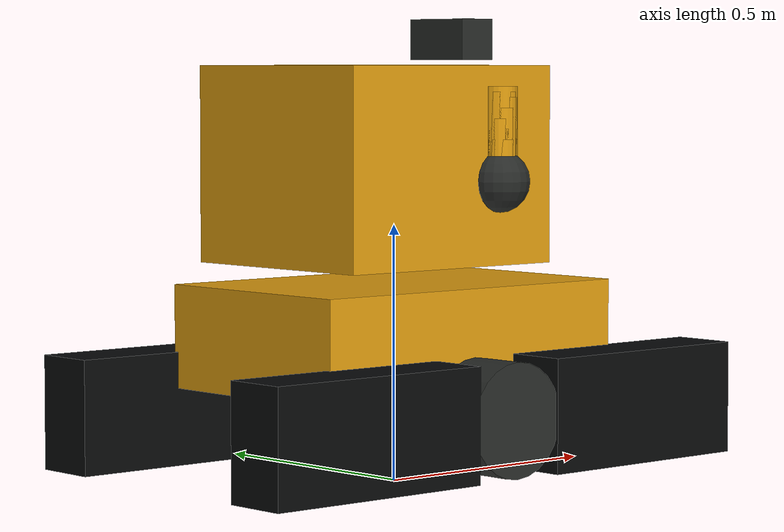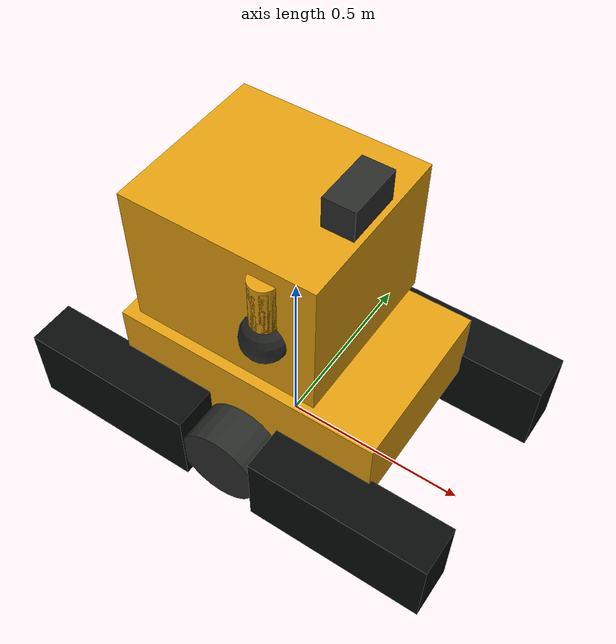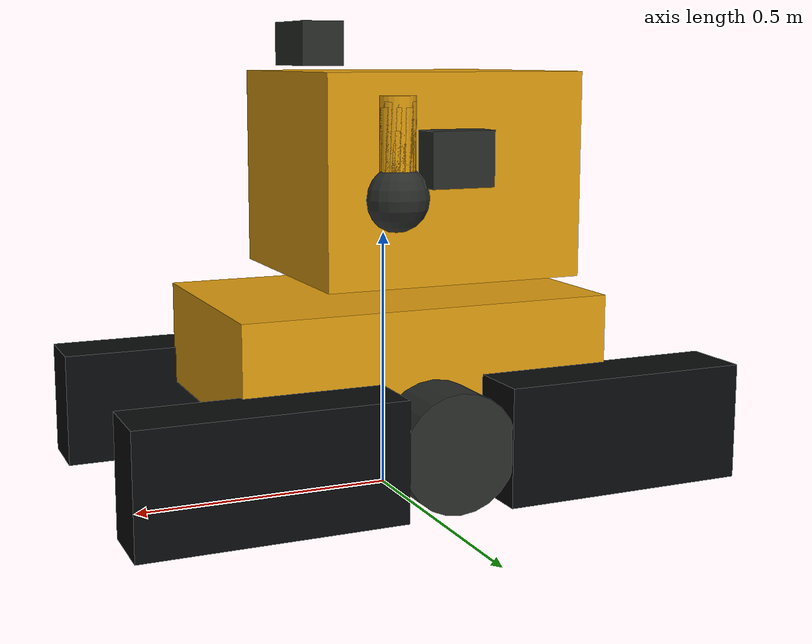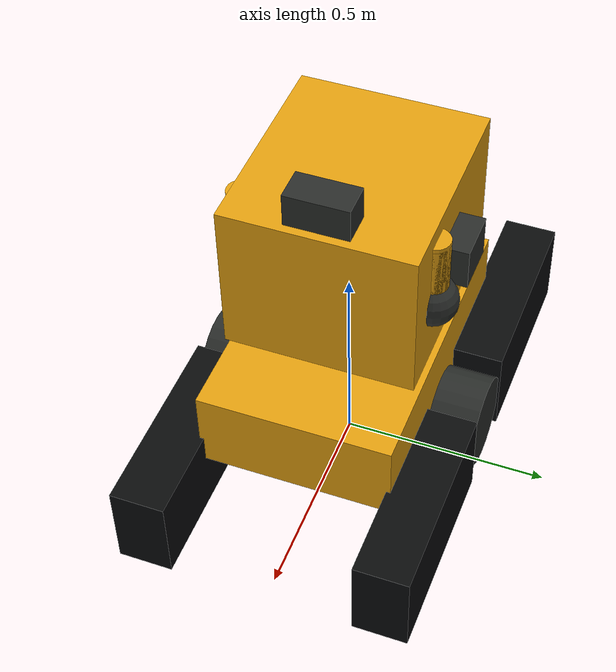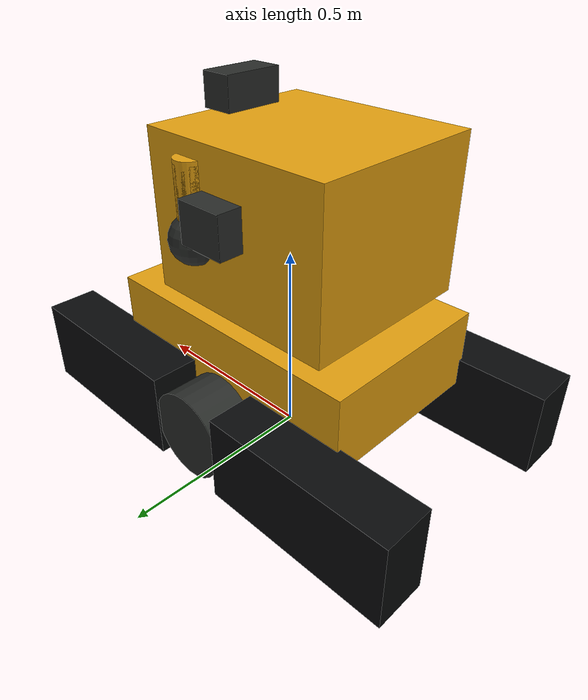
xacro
<?xml version="1.0"?>
<!-- Original reference geometry based on Mitsubishi Heavy Industries specifications. -->
<robot xmlns:xacro="http://www.ros.org/wiki/xacro" name="mhi_meister_reference">
  <material name="mhi_yellow"><color rgba="0.88 0.62 0.06 1"/></material>
  <material name="rubber"><color rgba="0.035 0.04 0.042 1"/></material>
  <material name="tool"><color rgba="0.16 0.17 0.16 1"/></material>
  <xacro:macro name="inertial" params="mass:=1">
    <inertial><mass value="${mass}"/><inertia ixx="0.01" ixy="0" ixz="0" iyy="0.01" iyz="0" izz="0.01"/></inertial>
  </xacro:macro>
  <xacro:macro name="crawler" params="name x y">
    <link name="${name}_crawler_link"><xacro:inertial mass="12"/><visual><geometry><box size="0.48 0.13 0.22"/></geometry><material name="rubber"/></visual><collision><geometry><box size="0.48 0.13 0.22"/></geometry></collision></link>
    <joint name="${name}_crawler_pitch_joint" type="revolute"><parent link="base_link"/><child link="${name}_crawler_link"/><origin xyz="${x} ${y} 0.15"/><axis xyz="0 1 0"/><limit lower="-0.65" upper="0.65" effort="800" velocity="1"/></joint>
  </xacro:macro>
  <xacro:macro name="arm_link" params="prefix index parent z axis">
    <link name="${prefix}_arm_link_${index}"><xacro:inertial mass="3"/><visual><origin xyz="0 0 ${z/2}"/><geometry><cylinder radius="0.035" length="${z}"/></geometry><material name="mhi_yellow"/></visual></link>
    <joint name="${prefix}_arm_joint_${index}" type="revolute"><parent link="${parent}"/><child link="${prefix}_arm_link_${index}"/><axis xyz="${axis}"/><limit lower="-2.7" upper="2.7" effort="150" velocity="1.2"/></joint>
  </xacro:macro>
  <xacro:macro name="seven_axis_arm" params="prefix y">
    <link name="${prefix}_shoulder"><xacro:inertial mass="6"/><visual><geometry><sphere radius="0.06"/></geometry><material name="tool"/></visual></link>
    <joint name="${prefix}_shoulder_mount" type="fixed"><parent link="upper_body_link"/><child link="${prefix}_shoulder"/><origin xyz="0.12 ${y} 0.16"/></joint>
    <xacro:arm_link prefix="${prefix}" index="1" parent="${prefix}_shoulder" z="0.18" axis="0 0 1"/>
    <xacro:arm_link prefix="${prefix}" index="2" parent="${prefix}_arm_link_1" z="0.17" axis="0 1 0"/>
    <xacro:arm_link prefix="${prefix}" index="3" parent="${prefix}_arm_link_2" z="0.16" axis="1 0 0"/>
    <xacro:arm_link prefix="${prefix}" index="4" parent="${prefix}_arm_link_3" z="0.14" axis="0 1 0"/>
    <xacro:arm_link prefix="${prefix}" index="5" parent="${prefix}_arm_link_4" z="0.12" axis="1 0 0"/>
    <xacro:arm_link prefix="${prefix}" index="6" parent="${prefix}_arm_link_5" z="0.10" axis="0 1 0"/>
    <xacro:arm_link prefix="${prefix}" index="7" parent="${prefix}_arm_link_6" z="0.08" axis="0 0 1"/>
    <link name="${prefix}_tool0"/><joint name="${prefix}_tool_fixed" type="fixed"><parent link="${prefix}_arm_link_7"/><child link="${prefix}_tool0"/><origin xyz="0 0 0.08"/></joint>
  </xacro:macro>
  <link name="base_link"><inertial><origin xyz="0 0 0.35"/><mass value="330"/><inertia ixx="24" ixy="0" ixz="0" iyy="45" iyz="0" izz="50"/></inertial><visual><origin xyz="0 0 0.29"/><geometry><box size="0.72 0.46 0.20"/></geometry><material name="mhi_yellow"/></visual><collision><origin xyz="0 0 0.28"/><geometry><box size="0.76 0.48 0.20"/></geometry></collision></link>
  <xacro:crawler name="front_left" x="0.34" y="0.285"/>
  <xacro:crawler name="front_right" x="0.34" y="-0.285"/>
  <xacro:crawler name="rear_left" x="-0.34" y="0.285"/>
  <xacro:crawler name="rear_right" x="-0.34" y="-0.285"/>
  <link name="left_drive"><xacro:inertial/><visual><geometry><cylinder radius="0.11" length="0.12"/></geometry><material name="tool"/></visual></link>
  <joint name="left_track_drive_joint" type="continuous"><parent link="base_link"/><child link="left_drive"/><origin xyz="0 0.285 0.15" rpy="1.5708 0 0"/><axis xyz="0 0 1"/><limit effort="1200" velocity="6"/></joint>
  <link name="right_drive"><xacro:inertial/><visual><geometry><cylinder radius="0.11" length="0.12"/></geometry><material name="tool"/></visual></link>
  <joint name="right_track_drive_joint" type="continuous"><parent link="base_link"/><child link="right_drive"/><origin xyz="0 -0.285 0.15" rpy="1.5708 0 0"/><axis xyz="0 0 1"/><limit effort="1200" velocity="6"/></joint>
  <link name="upper_body_link"><xacro:inertial mass="40"/><visual><origin xyz="0 0 0.19"/><geometry><box size="0.50 0.45 0.38"/></geometry><material name="mhi_yellow"/></visual></link>
  <joint name="upper_body_pitch_joint" type="revolute"><parent link="base_link"/><child link="upper_body_link"/><origin xyz="-0.05 0 0.43"/><axis xyz="0 1 0"/><limit lower="-0.45" upper="0.45" effort="1500" velocity="0.5"/></joint>
  <xacro:seven_axis_arm prefix="left" y="0.22"/>
  <xacro:seven_axis_arm prefix="right" y="-0.22"/>
  <link name="head_camera_link"><visual><geometry><box size="0.08 0.15 0.08"/></geometry><material name="tool"/></visual></link>
  <joint name="head_camera_fixed" type="fixed"><parent link="upper_body_link"/><child link="head_camera_link"/><origin xyz="0.20 0 0.43"/></joint>
  <link name="dose_meter_link"><visual><geometry><box size="0.12 0.07 0.10"/></geometry><material name="tool"/></visual></link>
  <joint name="dose_meter_fixed" type="fixed"><parent link="upper_body_link"/><child link="dose_meter_link"/><origin xyz="0.02 0.25 0.23"/></joint>
</robot>
